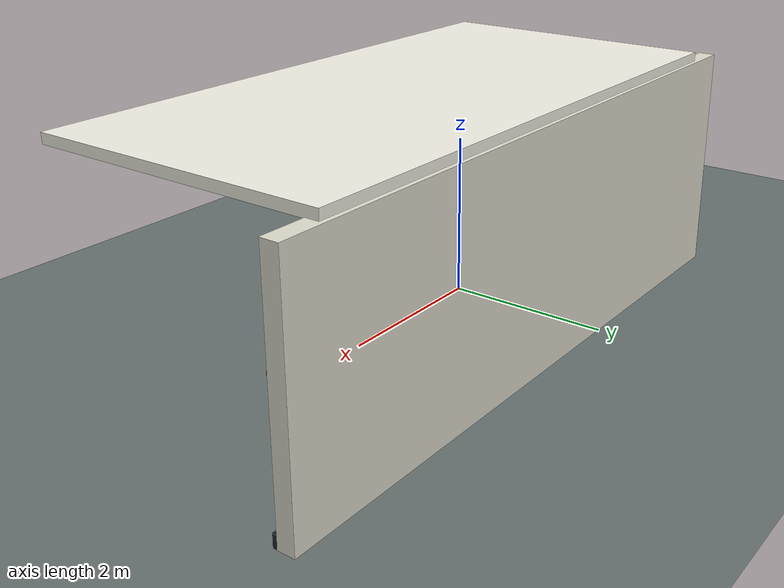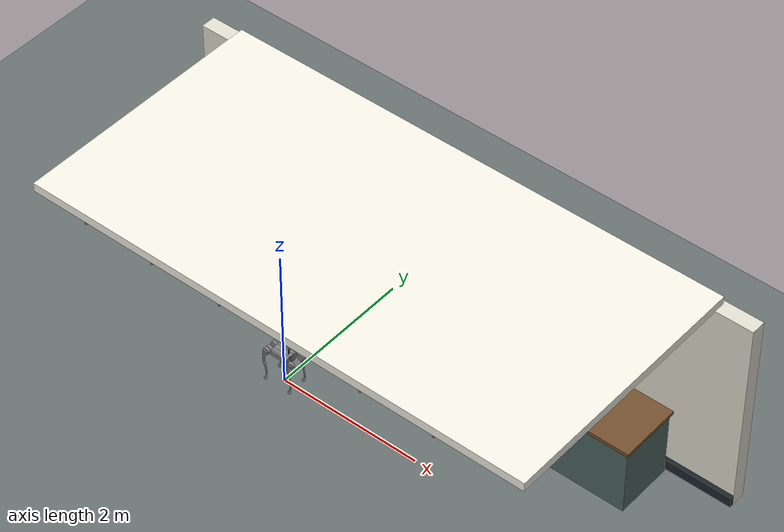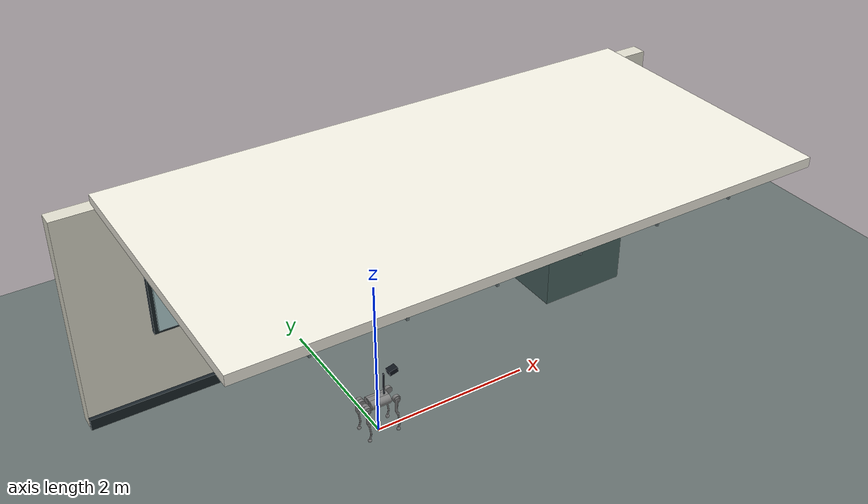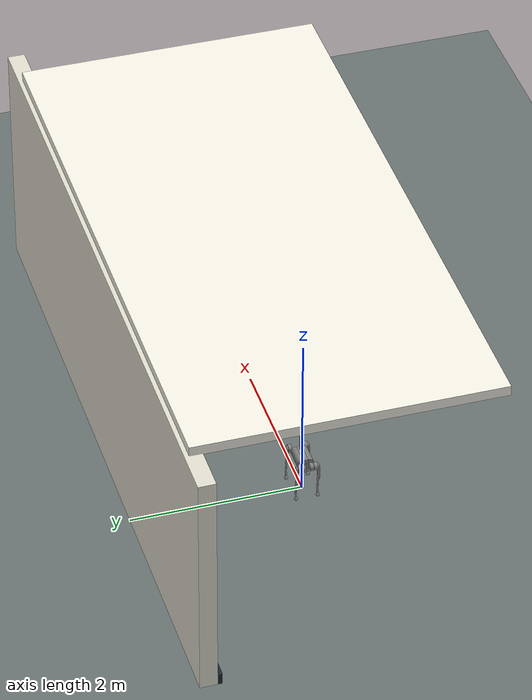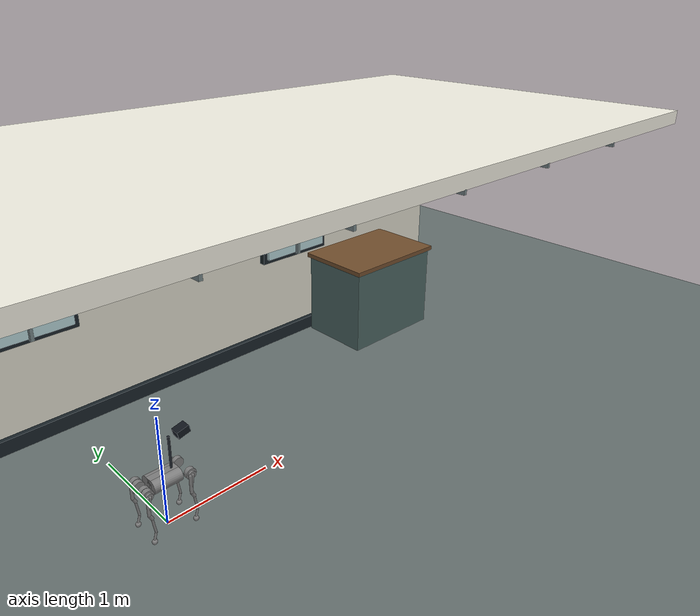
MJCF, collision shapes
<mujoco model="Go1 ceiling-fixture physical attachment failure">
  <compiler angle="radian" meshdir="../../pss/sim/mujoco/assets/go1/meshes" autolimits="true" />
  <option iterations="60" ls_iterations="5" timestep=".002" integrator="implicitfast">
    </option>
  <default>
    <default class="go1">
      <geom condim="1" contype="0" conaffinity="0" />
      <joint axis="0 1 0" armature="0.005" damping="0.5" />
      <position forcerange="-23.7 23.7" inheritrange="1" kp="35" />
      <default class="abduction">
        <joint axis="1 0 0" range="-0.863 0.863" frictionloss="0.3" />
      </default>
      <default class="hip">
        <joint range="-0.686 4.501" frictionloss="0.3" />
      </default>
      <default class="knee">
        <joint range="-2.818 -0.888" frictionloss="1.0" />
        <position forcerange="-35.55 35.55" />
      </default>
      <default class="visual">
        <geom type="mesh" contype="0" conaffinity="0" group="2" material="dark" />
      </default>
      <default class="collision">
        <geom group="3" type="capsule" contype="0" conaffinity="1" />
        <default class="hip_left1">
          <geom size="0.046 0.02" pos="0 0.045 0" quat="1 1 0 0" type="cylinder" />
        </default>
        <default class="hip_left2">
          <geom size="0.031 0.02" pos="0 0.065 0" quat="1 1 0 0" type="cylinder" />
        </default>
        <default class="hip_left3">
          <geom size="0.046 0.02" quat="1 1 0 0" type="cylinder" />
        </default>
        <default class="hip_right1">
          <geom size="0.046 0.02" pos="0 -0.045 0" quat="1 1 0 0" type="cylinder" />
        </default>
        <default class="hip_right2">
          <geom size="0.031 0.02" pos="0 -0.065 0" quat="1 1 0 0" type="cylinder" />
        </default>
        <default class="hip_right3">
          <geom size="0.046 0.02" quat="1 1 0 0" type="cylinder" />
        </default>
        <default class="thigh1">
          <geom size="0.015" fromto="-0.02 0 0 -0.02 0 -0.16" />
        </default>
        <default class="thigh2">
          <geom size="0.015" fromto="0 0 0 -0.02 0 -0.1" />
        </default>
        <default class="thigh3">
          <geom size="0.015" fromto="-0.02 0 -0.16 0 0 -0.2" />
        </default>
        <default class="calf1">
          <geom size="0.01" fromto="0 0 0 0.02 0 -0.13" />
        </default>
        <default class="calf2">
          <geom size="0.01" fromto="0.02 0 -0.13 0 0 -0.2" />
        </default>
        <default class="foot">
          <geom type="sphere" size="0.023" pos="0 0 -0.213" solimp="0.9 .95 0.023" contype="0" conaffinity="1" />
        </default>
      </default>
    </default>
  </default>
  <asset>
    <material name="dark" rgba="0.22 0.25 0.29 1" specular="0.38" shininess="0.32" />
    <mesh class="go1" file="trunk.stl" />
    <mesh class="go1" file="hip.stl" />
    <mesh class="go1" file="thigh_mirror.stl" />
    <mesh class="go1" file="calf.stl" />
    <mesh class="go1" file="thigh.stl" />
    <texture type="skybox" builtin="gradient" rgb1=".65 .72 .76" rgb2=".88 .90 .88" width="512" height="3072" />
    <texture name="stone_grid" type="2d" builtin="checker" rgb1=".63 .66 .66" rgb2=".60 .63 .64" width="512" height="512" />
    <material name="stone" rgba=".66 .69 .68 1" texture="stone_grid" texrepeat="7 5" reflectance="0" />
    <material name="plaster" rgba=".88 .87 .81 1" />
    <material name="ceiling" rgba=".96 .95 .90 1" />
    <material name="sage" rgba=".30 .40 .39 1" />
    <material name="oak" rgba=".45 .31 .18 1" />
    <material name="graphite" rgba=".10 .14 .16 1" />
    <material name="metal" rgba=".46 .52 .53 1" specular=".8" shininess=".7" />
    <material name="diffuser" rgba="1 .89 .64 1" emission=".5" />
    <material name="window" rgba=".72 .84 .85 1" emission=".14" />
    <material name="fixture_bronze" rgba=".68 .43 .15 1" specular=".35" shininess=".4" />
  </asset>
  <worldbody>
    <light name="spotlight" mode="targetbodycom" target="trunk" pos="3 0 4" />
    <body name="trunk" pos="0 0 0.445" childclass="go1">
      <camera name="track" pos="0.846 -1.3 0.316" xyaxes="0.866 0.500 0.000 -0.171 0.296 0.940" mode="trackcom" />
      <camera name="top" pos="-1 0 1" xyaxes="0 -1 0 0.7 0 0.7" mode="trackcom" />
      <camera name="side" pos="0 -1 .3" xyaxes="1 0 0 0 1 2" mode="trackcom" />
      <camera name="back" pos="-1 0 .3" xyaxes="0 -1 0 1 0 2" mode="trackcom" />
      <body name="rgbd_mast" pos="0.08 0 0.055">
        <geom type="cylinder" size="0.012 0.145" pos="0 0 0.145" mass="0.04" rgba="0.12 0.14 0.17 1" contype="0" conaffinity="0" group="2" />
        <camera name="omnivla_ego" pos="0.18 0 0.295" xyaxes="0 -1 0 0 0 1" mode="fixed" fovy="58" />
        <body name="rgbd_head" pos="0.115 0 0.295" quat="0.9930684569549263 0 -0.11753739745783764 0">
          <geom type="box" size="0.055 0.042 0.032" mass="0.12" rgba="0.07 0.09 0.12 1" contype="0" conaffinity="0" group="2" />
          <geom type="cylinder" size="0.014 0.006" pos="0.055 -0.021 0" quat="0.707107 0 0.707107 0" mass="0.01" rgba="0.05 0.18 0.28 1" contype="0" conaffinity="0" group="2" />
          <geom type="cylinder" size="0.014 0.006" pos="0.055 0.021 0" quat="0.707107 0 0.707107 0" mass="0.01" rgba="0.05 0.18 0.28 1" contype="0" conaffinity="0" group="2" />
          <camera name="ego_rgbd" pos="0.065 0 0" xyaxes="0 -1 0 0 0 1" mode="fixed" fovy="64" />
        </body>
      </body>
      <site name="head" pos="0.3 0 0" rgba="1 0 0 1" size="0.02" group="5" />
      <inertial pos="0.0223 0.002 -0.0005" quat="-0.00342088 0.705204 0.000106698 0.708996" mass="5.204" diaginertia="0.0716565 0.0630105 0.0168101" />
      <freejoint />
      <geom class="visual" mesh="trunk" />
      <geom class="collision" size="0.125 0.04 0.057" type="box" />
      <geom class="collision" quat="1 0 1 0" pos="0 -0.04 0" size="0.058 0.125" type="cylinder" />
      <geom class="collision" quat="1 0 1 0" pos="0 +0.04 0" size="0.058 0.125" type="cylinder" />
      <site name="imu" pos="-0.01592 -0.06659 -0.00617" group="5" />
      <body name="FR_hip" pos="0.1881 -0.04675 0">
        <inertial pos="-0.0049166 0.00762615 -8.865e-05" quat="0.507341 0.514169 0.495027 0.482891" mass="0.68" diaginertia="0.000734064 0.000468438 0.000398719" />
        <joint class="abduction" name="FR_hip_joint" />
        <geom class="visual" mesh="hip" quat="1 0 0 0" />
        <geom class="hip_right1" />
        <geom class="hip_right2" />
        <body name="FR_thigh" pos="0 -0.08 0">
          <inertial pos="-0.00304722 0.019315 -0.0305004" quat="0.65243 -0.0272313 0.0775126 0.753383" mass="1.009" diaginertia="0.00478717 0.00460903 0.000709268" />
          <joint class="hip" name="FR_thigh_joint" />
          <geom class="visual" mesh="thigh_mirror" />
          <geom class="thigh1" />
          <geom class="thigh2" />
          <geom class="thigh3" />
          <body name="FR_calf" pos="0 0 -0.213">
            <inertial pos="0.00429862 0.000976676 -0.146197" quat="0.691246 0.00357467 0.00511118 0.722592" mass="0.195862" diaginertia="0.00149767 0.00148468 3.58427e-05" />
            <joint class="knee" name="FR_calf_joint" />
            <geom class="visual" mesh="calf" />
            <geom class="calf1" />
            <geom class="calf2" />
            <geom name="FR" class="foot" />
            <site name="FR" pos="0 0 -0.213" type="sphere" size="0.023" group="5" />
          </body>
        </body>
      </body>
      <body name="FL_hip" pos="0.1881 0.04675 0">
        <inertial pos="-0.0049166 -0.00762615 -8.865e-05" quat="0.482891 0.495027 0.514169 0.507341" mass="0.68" diaginertia="0.000734064 0.000468438 0.000398719" />
        <joint class="abduction" name="FL_hip_joint" />
        <geom class="visual" mesh="hip" />
        <geom class="hip_left1" />
        <geom class="hip_left2" />
        <body name="FL_thigh" pos="0 0.08 0">
          <inertial pos="-0.00304722 -0.019315 -0.0305004" quat="0.753383 0.0775126 -0.0272313 0.65243" mass="1.009" diaginertia="0.00478717 0.00460903 0.000709268" />
          <joint class="hip" name="FL_thigh_joint" />
          <geom class="visual" mesh="thigh" />
          <geom class="thigh1" />
          <geom class="thigh2" />
          <geom class="thigh3" />
          <body name="FL_calf" pos="0 0 -0.213">
            <inertial pos="0.00429862 0.000976676 -0.146197" quat="0.691246 0.00357467 0.00511118 0.722592" mass="0.195862" diaginertia="0.00149767 0.00148468 3.58427e-05" />
            <joint class="knee" name="FL_calf_joint" />
            <geom class="visual" mesh="calf" />
            <geom class="calf1" />
            <geom class="calf2" />
            <geom name="FL" class="foot" />
            <site name="FL" pos="0 0 -0.213" type="sphere" size="0.023" group="5" />
          </body>
        </body>
      </body>
      <body name="RR_hip" pos="-0.1881 -0.04675 0">
        <inertial pos="0.0049166 0.00762615 -8.865e-05" quat="0.495027 0.482891 0.507341 0.514169" mass="0.68" diaginertia="0.000734064 0.000468438 0.000398719" />
        <joint class="abduction" name="RR_hip_joint" />
        <geom class="visual" quat="0 0 0 -1" mesh="hip" />
        <geom class="hip_right1" />
        <geom class="hip_right2" />
        <geom class="hip_right3" />
        <body name="RR_thigh" pos="0 -0.08 0">
          <inertial pos="-0.00304722 0.019315 -0.0305004" quat="0.65243 -0.0272313 0.0775126 0.753383" mass="1.009" diaginertia="0.00478717 0.00460903 0.000709268" />
          <joint class="hip" name="RR_thigh_joint" />
          <geom class="visual" mesh="thigh_mirror" />
          <geom class="thigh1" />
          <geom class="thigh2" />
          <geom class="thigh3" />
          <body name="RR_calf" pos="0 0 -0.213">
            <inertial pos="0.00429862 0.000976676 -0.146197" quat="0.691246 0.00357467 0.00511118 0.722592" mass="0.195862" diaginertia="0.00149767 0.00148468 3.58427e-05" />
            <joint class="knee" name="RR_calf_joint" />
            <geom class="visual" mesh="calf" />
            <geom class="calf1" />
            <geom class="calf2" />
            <geom name="RR" class="foot" />
            <site name="RR" pos="0 0 -0.213" type="sphere" size="0.023" group="5" />
          </body>
        </body>
      </body>
      <body name="RL_hip" pos="-0.1881 0.04675 0">
        <inertial pos="0.0049166 -0.00762615 -8.865e-05" quat="0.514169 0.507341 0.482891 0.495027" mass="0.68" diaginertia="0.000734064 0.000468438 0.000398719" />
        <joint class="abduction" name="RL_hip_joint" />
        <geom class="visual" quat="0 0 1 0" mesh="hip" />
        <geom class="hip_left1" />
        <geom class="hip_left2" />
        <geom class="hip_left3" />
        <body name="RL_thigh" pos="0 0.08 0">
          <inertial pos="-0.00304722 -0.019315 -0.0305004" quat="0.753383 0.0775126 -0.0272313 0.65243" mass="1.009" diaginertia="0.00478717 0.00460903 0.000709268" />
          <joint class="hip" name="RL_thigh_joint" />
          <geom class="visual" mesh="thigh" />
          <geom class="thigh1" />
          <geom class="thigh2" />
          <geom class="thigh3" />
          <body name="RL_calf" pos="0 0 -0.213">
            <inertial pos="0.00429862 0.000976676 -0.146197" quat="0.691246 0.00357467 0.00511118 0.722592" mass="0.195862" diaginertia="0.00149767 0.00148468 3.58427e-05" />
            <joint class="knee" name="RL_calf_joint" />
            <geom class="visual" mesh="calf" />
            <geom class="calf1" />
            <geom class="calf2" />
            <geom name="RL" class="foot" />
            <site name="RL" pos="0 0 -0.213" type="sphere" size="0.023" group="5" />
          </body>
        </body>
      </body>
    </body>
    <geom name="floor" type="plane" size="8 5 .1" material="stone" friction=".9 .01 .001" />
    <geom name="back_wall" type="box" pos="1.2 1.9 1.4" size="4 .10 1.4" material="plaster" />
    <geom name="back_skirting" type="box" pos="1.2 1.775 .075" size="4 .025 .075" material="graphite" />
    <geom type="box" pos="-1.45 1.755 1.75" size=".46 .035 .71" material="graphite" />
    <geom type="box" pos="-1.45 1.71 1.75" size=".41 .02 .66" material="window" contype="0" conaffinity="0" />
    <geom type="box" pos="-1.45 1.675 1.75" size=".016 .025 .67" material="metal" contype="0" conaffinity="0" />
    <geom type="box" pos="-0.25 1.755 1.75" size=".46 .035 .71" material="graphite" />
    <geom type="box" pos="-0.25 1.71 1.75" size=".41 .02 .66" material="window" contype="0" conaffinity="0" />
    <geom type="box" pos="-0.25 1.675 1.75" size=".016 .025 .67" material="metal" contype="0" conaffinity="0" />
    <geom type="box" pos="2.85 1.755 1.75" size=".46 .035 .71" material="graphite" />
    <geom type="box" pos="2.85 1.71 1.75" size=".41 .02 .66" material="window" contype="0" conaffinity="0" />
    <geom type="box" pos="2.85 1.675 1.75" size=".016 .025 .67" material="metal" contype="0" conaffinity="0" />
    <geom name="storage" type="box" pos="3.7 1.32 .48" size=".60 .40 .48" material="sage" />
    <geom name="storage_top" type="box" pos="3.7 1.32 .975" size=".63 .43 .025" material="oak" />
    <geom name="ceiling_panel" type="box" pos="1.2 .2 2.85" size="3.5 1.75 .06" material="ceiling" />
    <geom type="box" pos="-1.5 .2 2.775" size=".012 1.75 .018" material="metal" contype="0" conaffinity="0" />
    <geom type="box" pos="-0.5 .2 2.775" size=".012 1.75 .018" material="metal" contype="0" conaffinity="0" />
    <geom type="box" pos="0.5 .2 2.775" size=".012 1.75 .018" material="metal" contype="0" conaffinity="0" />
    <geom type="box" pos="1.5 .2 2.775" size=".012 1.75 .018" material="metal" contype="0" conaffinity="0" />
    <geom type="box" pos="2.5 .2 2.775" size=".012 1.75 .018" material="metal" contype="0" conaffinity="0" />
    <geom type="box" pos="3.5 .2 2.775" size=".012 1.75 .018" material="metal" contype="0" conaffinity="0" />
    <light name="daylight" pos="-.5 -2.8 4.0" dir=".2 .5 -1" directional="true" diffuse=".85 .89 .93" ambient=".13 .14 .15" castshadow="true" />
    <light name="warm_fill" pos="3 1.2 2.5" dir="-.5 -.4 -1" diffuse=".45 .39 .30" castshadow="false" />
    <light name="interior_fill" pos="-.8 -1.1 2.35" dir=".2 .2 -.7" diffuse=".7 .68 .60" ambient=".08 .08 .08" castshadow="false" />
    <body name="loose_fixture" pos="2.05 0.65 2.2" quat="0.9537169507482269 0.0 0.0 0.3007057995042731">
      <freejoint name="fixture_free" />
      <inertial pos="0 0 0" mass="3.2" diaginertia=".057 .28 .30" />
      <geom name="fixture_housing" type="box" size=".58 .23 .038" material="fixture_bronze" />
      <geom name="fixture_luminous_face" type="box" pos="0 0 -.044" size=".53 .19 .013" material="diffuser" mass="0" contype="0" conaffinity="0" />
      <geom type="box" pos="0 -0.223 0" size=".59 .010 .045" material="metal" mass="0" contype="0" conaffinity="0" />
      <geom type="box" pos="0 0.223 0" size=".59 .010 .045" material="metal" mass="0" contype="0" conaffinity="0" />
      <geom type="box" pos="-0.578 0 0" size=".010 .23 .045" material="metal" mass="0" contype="0" conaffinity="0" />
      <geom type="box" pos="0.578 0 0" size=".010 .23 .045" material="metal" mass="0" contype="0" conaffinity="0" />
      <site name="left_panel_anchor" pos="-0.49 0.0 0.04" size=".005" rgba="0 0 0 0" />
      <site name="right_panel_anchor" pos="0.49 0.0 0.04" size=".005" rgba="0 0 0 0" />
    </body>
    <camera name="scene_preview" pos="-2.5 -3.6 1.7" xyaxes="0.7474093186836597 -0.6643638388299198 0.0 0.065880573607152 0.07411564530804599 0.9950711638580251" fovy="54" />
    <geom name="left_mount" type="cylinder" pos="1.6486154982983938 0.3689475461879875 2.73" size=".065 .035" material="metal" />
    <site name="left_ceiling_anchor" pos="1.6486154982983938 0.3689475461879875 2.73" size=".005" rgba="0 0 0 0" />
    <geom name="left_remaining_wire_stub" type="capsule" fromto="1.6486154982983938 0.3689475461879875 2.71 1.6486154982983938 0.3689475461879875 2.58" size=".008" material="graphite" contype="0" conaffinity="0" />
    <geom name="right_mount" type="cylinder" pos="2.451384501701606 0.9310524538120126 2.73" size=".065 .035" material="metal" />
    <site name="right_ceiling_anchor" pos="2.451384501701606 0.9310524538120126 2.73" size=".005" rgba="0 0 0 0" />
    <geom name="right_remaining_wire_stub" type="capsule" fromto="2.451384501701606 0.9310524538120126 2.71 2.451384501701606 0.9310524538120126 2.58" size=".008" material="graphite" contype="0" conaffinity="0" />
  </worldbody>
  <actuator>
    <position class="abduction" name="FR_hip" joint="FR_hip_joint" />
    <position class="hip" name="FR_thigh" joint="FR_thigh_joint" />
    <position class="knee" name="FR_calf" joint="FR_calf_joint" />
    <position class="abduction" name="FL_hip" joint="FL_hip_joint" />
    <position class="hip" name="FL_thigh" joint="FL_thigh_joint" />
    <position class="knee" name="FL_calf" joint="FL_calf_joint" />
    <position class="abduction" name="RR_hip" joint="RR_hip_joint" />
    <position class="hip" name="RR_thigh" joint="RR_thigh_joint" />
    <position class="knee" name="RR_calf" joint="RR_calf_joint" />
    <position class="abduction" name="RL_hip" joint="RL_hip_joint" />
    <position class="hip" name="RL_thigh" joint="RL_thigh_joint" />
    <position class="knee" name="RL_calf" joint="RL_calf_joint" />
  </actuator>
  <sensor>
    <gyro site="imu" name="gyro" />
    <velocimeter site="imu" name="local_linvel" />
    <accelerometer site="imu" name="accelerometer" />
    <framepos objtype="site" objname="imu" name="position" />
    <framezaxis objtype="site" objname="imu" name="upvector" />
    <framexaxis objtype="site" objname="imu" name="forwardvector" />
    <framelinvel objtype="site" objname="imu" name="global_linvel" />
    <frameangvel objtype="site" objname="imu" name="global_angvel" />
    <framequat objtype="site" objname="imu" name="orientation" />
    <framelinvel objtype="site" objname="FR" name="FR_global_linvel" />
    <framelinvel objtype="site" objname="FL" name="FL_global_linvel" />
    <framelinvel objtype="site" objname="RR" name="RR_global_linvel" />
    <framelinvel objtype="site" objname="RL" name="RL_global_linvel" />
    <framepos objtype="site" objname="FR" name="FR_pos" reftype="site" refname="imu" />
    <framepos objtype="site" objname="FL" name="FL_pos" reftype="site" refname="imu" />
    <framepos objtype="site" objname="RR" name="RR_pos" reftype="site" refname="imu" />
    <framepos objtype="site" objname="RL" name="RL_pos" reftype="site" refname="imu" />
  </sensor>
  <visual>
    <global offwidth="1800" offheight="1200" />
    <quality shadowsize="4096" offsamples="4" />
    <headlight ambient=".36 .37 .38" diffuse=".70 .68 .63" specular=".08 .08 .08" />
    <map znear=".01" />
  </visual>
  <equality>
    <connect name="left_attachment" body1="loose_fixture" anchor="-0.49000000000000005 -1.3241815637170904e-17 0.5299999999999998" solref=".004 1" solimp=".95 .99 .001" active="true" />
    <connect name="right_attachment" body1="loose_fixture" anchor="0.49000000000000027 -8.636216195107557e-17 0.5299999999999998" solref=".004 1" solimp=".95 .99 .001" active="true" />
  </equality>
  <tendon>
    <spatial name="left_suspension_wire" width=".008" rgba=".11 .13 .14 1">
      <site site="left_ceiling_anchor" />
      <site site="left_panel_anchor" />
    </spatial>
    <spatial name="right_suspension_wire" width=".008" rgba=".11 .13 .14 1">
      <site site="right_ceiling_anchor" />
      <site site="right_panel_anchor" />
    </spatial>
  </tendon>
</mujoco>
